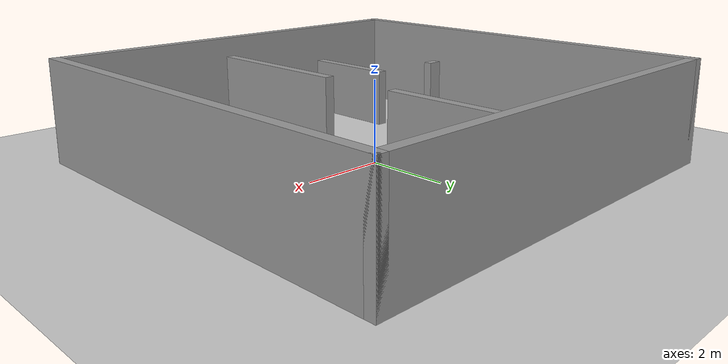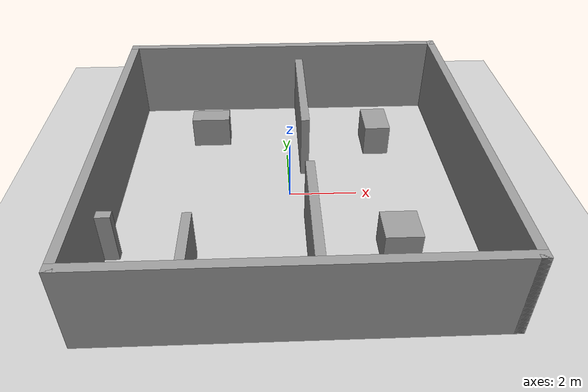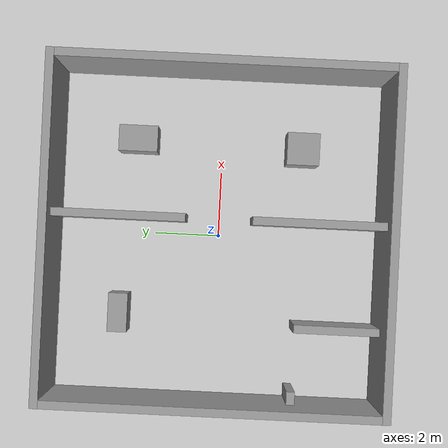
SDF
<?xml version="1.0" ?>
<sdf version='1.6'>
  <world name='bench_arena'>

    <light name='sun' type='directional'>
      <cast_shadows>1</cast_shadows>
      <pose frame=''>0 0 10 0 -0 0</pose>
      <diffuse>0.8 0.8 0.8 1</diffuse>
      <specular>0.1 0.1 0.1 1</specular>
      <attenuation>
        <range>1000</range>
        <constant>0.9</constant>
        <linear>0.01</linear>
        <quadratic>0.001</quadratic>
      </attenuation>
      <direction>-0.5 0.5 -1</direction>
    </light>

    <!-- Drivable floor.  Named "ground_plane" on purpose: the substring match
         on "ground"/"plane" is what keeps it out of the obstacle list. -->
    <model name='ground_plane'>
      <static>1</static>
      <link name='link'>
        <collision name='collision'>
          <geometry>
            <plane>
              <normal>0 0 1</normal>
              <size>100 100</size>
            </plane>
          </geometry>
          <surface>
            <friction>
              <ode>
                <mu>100</mu>
                <mu2>50</mu2>
              </ode>
              <torsional><ode/></torsional>
            </friction>
            <contact><ode/></contact>
            <bounce/>
          </surface>
          <max_contacts>10</max_contacts>
        </collision>
        <visual name='visual'>
          <cast_shadows>0</cast_shadows>
          <geometry>
            <plane>
              <normal>0 0 1</normal>
              <size>100 100</size>
            </plane>
          </geometry>
          <material>
            <script>
              <uri>file://media/materials/scripts/gazebo.material</uri>
              <name>Gazebo/Grey</name>
            </script>
          </material>
        </visual>
      </link>
    </model>

    <gravity>0 0 -9.8</gravity>
    <magnetic_field>6e-06 2.3e-05 -4.2e-05</magnetic_field>
    <atmosphere type='adiabatic'/>
    <physics name='default_physics' default='0' type='ode'>
      <max_step_size>0.01</max_step_size>
      <real_time_factor>1</real_time_factor>
      <real_time_update_rate>100</real_time_update_rate>
    </physics>
    <scene>
      <ambient>0.4 0.4 0.4 1</ambient>
      <background>0.7 0.7 0.7 1</background>
      <shadows>1</shadows>
    </scene>
    <spherical_coordinates>
      <surface_model>EARTH_WGS84</surface_model>
      <latitude_deg>0</latitude_deg>
      <longitude_deg>0</longitude_deg>
      <elevation>0</elevation>
      <heading_deg>0</heading_deg>
    </spherical_coordinates>

    <!-- ================= boundary walls (inner faces at +/-5.0) ============ -->

    <model name='wall_north'>
      <pose frame=''>0 5.125 0 0 -0 0</pose>
      <link name='link'>
        <collision name='collision'>
          <pose frame=''>0 0 1.25 0 -0 0</pose>
          <geometry><box><size>10.5 0.25 2.5</size></box></geometry>
          <max_contacts>10</max_contacts>
        </collision>
        <visual name='visual'>
          <pose frame=''>0 0 1.25 0 -0 0</pose>
          <geometry><box><size>10.5 0.25 2.5</size></box></geometry>
          <material>
            <script>
              <uri>file://media/materials/scripts/gazebo.material</uri>
              <name>Gazebo/Grey</name>
            </script>
            <ambient>1 1 1 1</ambient>
          </material>
        </visual>
      </link>
      <static>1</static>
    </model>

    <model name='wall_south'>
      <pose frame=''>0 -5.125 0 0 -0 0</pose>
      <link name='link'>
        <collision name='collision'>
          <pose frame=''>0 0 1.25 0 -0 0</pose>
          <geometry><box><size>10.5 0.25 2.5</size></box></geometry>
          <max_contacts>10</max_contacts>
        </collision>
        <visual name='visual'>
          <pose frame=''>0 0 1.25 0 -0 0</pose>
          <geometry><box><size>10.5 0.25 2.5</size></box></geometry>
          <material>
            <script>
              <uri>file://media/materials/scripts/gazebo.material</uri>
              <name>Gazebo/Grey</name>
            </script>
            <ambient>1 1 1 1</ambient>
          </material>
        </visual>
      </link>
      <static>1</static>
    </model>

    <model name='wall_east'>
      <pose frame=''>5.125 0 0 0 -0 0</pose>
      <link name='link'>
        <collision name='collision'>
          <pose frame=''>0 0 1.25 0 -0 0</pose>
          <geometry><box><size>0.25 10.5 2.5</size></box></geometry>
          <max_contacts>10</max_contacts>
        </collision>
        <visual name='visual'>
          <pose frame=''>0 0 1.25 0 -0 0</pose>
          <geometry><box><size>0.25 10.5 2.5</size></box></geometry>
          <material>
            <script>
              <uri>file://media/materials/scripts/gazebo.material</uri>
              <name>Gazebo/Grey</name>
            </script>
            <ambient>1 1 1 1</ambient>
          </material>
        </visual>
      </link>
      <static>1</static>
    </model>

    <model name='wall_west'>
      <pose frame=''>-5.125 0 0 0 -0 0</pose>
      <link name='link'>
        <collision name='collision'>
          <pose frame=''>0 0 1.25 0 -0 0</pose>
          <geometry><box><size>0.25 10.5 2.5</size></box></geometry>
          <max_contacts>10</max_contacts>
        </collision>
        <visual name='visual'>
          <pose frame=''>0 0 1.25 0 -0 0</pose>
          <geometry><box><size>0.25 10.5 2.5</size></box></geometry>
          <material>
            <script>
              <uri>file://media/materials/scripts/gazebo.material</uri>
              <name>Gazebo/Grey</name>
            </script>
            <ambient>1 1 1 1</ambient>
          </material>
        </visual>
      </link>
      <static>1</static>
    </model>

    <model name='divider_south'>
      <pose frame=''>0.5 -3.0 0 0 -0 0</pose>
      <link name='link'>
        <collision name='collision'>
          <pose frame=''>0 0 1.0 0 -0 0</pose>
          <geometry><box><size>0.25 4.0 2.0</size></box></geometry>
          <max_contacts>10</max_contacts>
        </collision>
        <visual name='visual'>
          <pose frame=''>0 0 1.0 0 -0 0</pose>
          <geometry><box><size>0.25 4.0 2.0</size></box></geometry>
          <material>
            <script>
              <uri>file://media/materials/scripts/gazebo.material</uri>
              <name>Gazebo/Grey</name>
            </script>
            <ambient>1 1 1 1</ambient>
          </material>
        </visual>
      </link>
      <static>1</static>
    </model>

    <model name='divider_north'>
      <pose frame=''>0.5 3.0 0 0 -0 0</pose>
      <link name='link'>
        <collision name='collision'>
          <pose frame=''>0 0 1.0 0 -0 0</pose>
          <geometry><box><size>0.25 4.0 2.0</size></box></geometry>
          <max_contacts>10</max_contacts>
        </collision>
        <visual name='visual'>
          <pose frame=''>0 0 1.0 0 -0 0</pose>
          <geometry><box><size>0.25 4.0 2.0</size></box></geometry>
          <material>
            <script>
              <uri>file://media/materials/scripts/gazebo.material</uri>
              <name>Gazebo/Grey</name>
            </script>
            <ambient>1 1 1 1</ambient>
          </material>
        </visual>
      </link>
      <static>1</static>
    </model>

    <model name='pocket_east'>
      <pose frame=''>-2.7 -3.7 0 0 -0 0</pose>
      <link name='link'>
        <collision name='collision'>
          <pose frame=''>0 0 0.75 0 -0 0</pose>
          <geometry><box><size>0.25 2.6 1.5</size></box></geometry>
          <max_contacts>10</max_contacts>
        </collision>
        <visual name='visual'>
          <pose frame=''>0 0 0.75 0 -0 0</pose>
          <geometry><box><size>0.25 2.6 1.5</size></box></geometry>
          <material>
            <script>
              <uri>file://media/materials/scripts/gazebo.material</uri>
              <name>Gazebo/Grey</name>
            </script>
            <ambient>1 1 1 1</ambient>
          </material>
        </visual>
      </link>
      <static>1</static>
    </model>

    <model name='pocket_north'>
      <pose frame=''>-4.8 -2.4 0 0 -0 0</pose>
      <link name='link'>
        <collision name='collision'>
          <pose frame=''>0 0 0.75 0 -0 0</pose>
          <geometry><box><size>0.4 0.25 1.5</size></box></geometry>
          <max_contacts>10</max_contacts>
        </collision>
        <visual name='visual'>
          <pose frame=''>0 0 0.75 0 -0 0</pose>
          <geometry><box><size>0.4 0.25 1.5</size></box></geometry>
          <material>
            <script>
              <uri>file://media/materials/scripts/gazebo.material</uri>
              <name>Gazebo/Grey</name>
            </script>
            <ambient>1 1 1 1</ambient>
          </material>
        </visual>
      </link>
      <static>1</static>
    </model>

    <model name='box_south_east'>
      <pose frame=''>2.8 -2.5 0 0 -0 0</pose>
      <link name='link'>
        <collision name='collision'>
          <pose frame=''>0 0 0.5 0 -0 0</pose>
          <geometry><box><size>1.0 1.0 1.0</size></box></geometry>
          <max_contacts>10</max_contacts>
        </collision>
        <visual name='visual'>
          <pose frame=''>0 0 0.5 0 -0 0</pose>
          <geometry><box><size>1.0 1.0 1.0</size></box></geometry>
          <material>
            <script>
              <uri>file://media/materials/scripts/gazebo.material</uri>
              <name>Gazebo/Grey</name>
            </script>
            <ambient>1 1 1 1</ambient>
          </material>
        </visual>
      </link>
      <static>1</static>
    </model>

    <model name='box_north_east'>
      <pose frame=''>2.9 2.6 0 0 -0 0</pose>
      <link name='link'>
        <collision name='collision'>
          <pose frame=''>0 0 0.5 0 -0 0</pose>
          <geometry><box><size>0.8 1.2 1.0</size></box></geometry>
          <max_contacts>10</max_contacts>
        </collision>
        <visual name='visual'>
          <pose frame=''>0 0 0.5 0 -0 0</pose>
          <geometry><box><size>0.8 1.2 1.0</size></box></geometry>
          <material>
            <script>
              <uri>file://media/materials/scripts/gazebo.material</uri>
              <name>Gazebo/Grey</name>
            </script>
            <ambient>1 1 1 1</ambient>
          </material>
        </visual>
      </link>
      <static>1</static>
    </model>

    <model name='box_north_west'>
      <pose frame=''>-2.5 3.0 0 0 -0 0</pose>
      <link name='link'>
        <collision name='collision'>
          <pose frame=''>0 0 0.5 0 -0 0</pose>
          <geometry><box><size>1.2 0.6 1.0</size></box></geometry>
          <max_contacts>10</max_contacts>
        </collision>
        <visual name='visual'>
          <pose frame=''>0 0 0.5 0 -0 0</pose>
          <geometry><box><size>1.2 0.6 1.0</size></box></geometry>
          <material>
            <script>
              <uri>file://media/materials/scripts/gazebo.material</uri>
              <name>Gazebo/Grey</name>
            </script>
            <ambient>1 1 1 1</ambient>
          </material>
        </visual>
      </link>
      <static>1</static>
    </model>

  </world>
</sdf>
